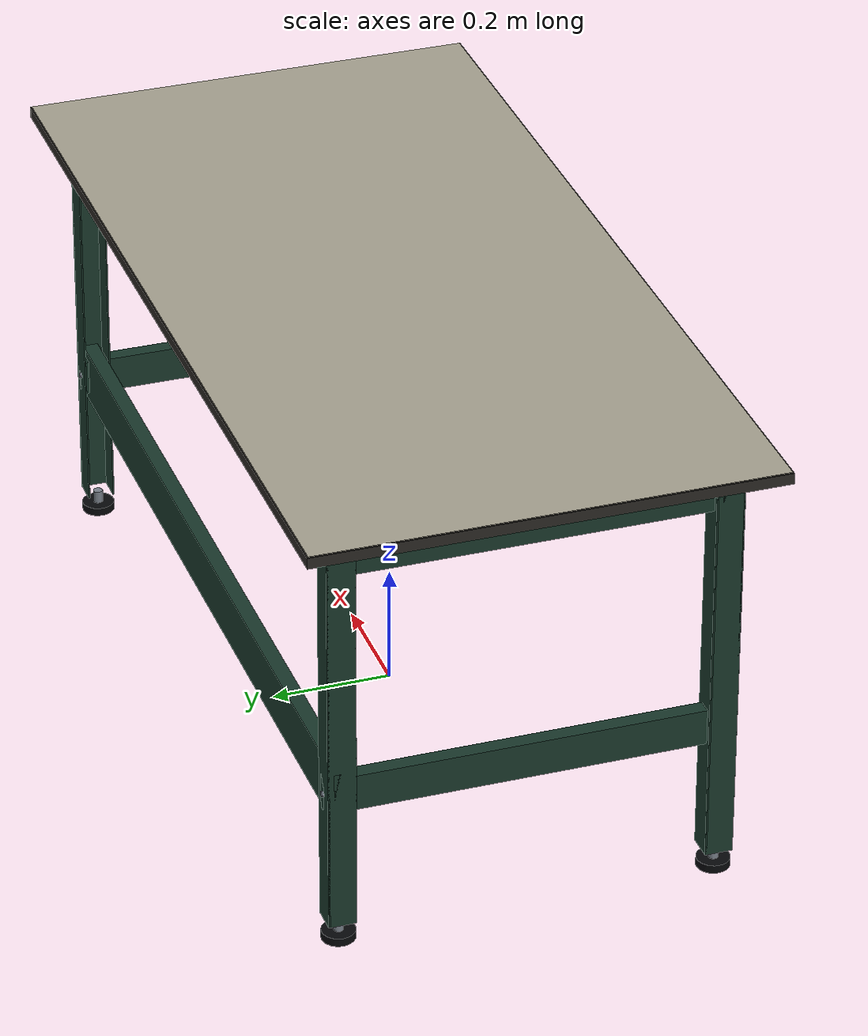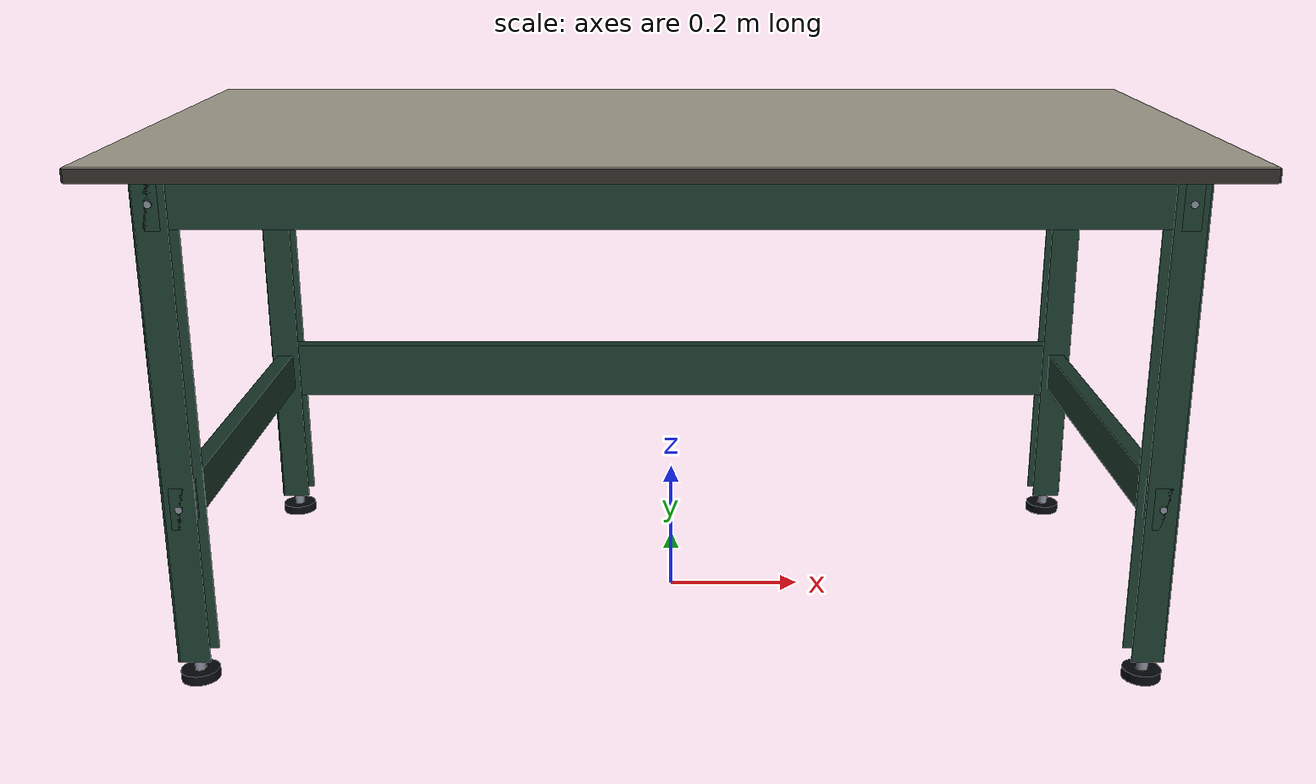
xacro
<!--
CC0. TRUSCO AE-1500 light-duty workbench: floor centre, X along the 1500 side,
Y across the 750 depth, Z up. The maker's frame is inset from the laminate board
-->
<?xml version="1.0"?>
<robot xmlns:xacro="http://www.ros.org/wiki/xacro" name="trusco-ae-1500-frame">
  <xacro:include filename="../../equipment-common/visual/primitives.xacro"/>
  <xacro:arg name="width" default="1.5"/><xacro:arg name="depth" default="0.75"/>
  <xacro:arg name="height" default="0.74"/><xacro:arg name="leg" default="0.045"/>
  <xacro:arg name="top_thickness" default="0.021"/>
  <xacro:arg name="inset_length" default="0.085"/><xacro:arg name="inset_width" default="0.070"/>
  <xacro:property name="w" value="$(arg width)"/><xacro:property name="d" value="$(arg depth)"/>
  <xacro:property name="h" value="$(arg height)"/><xacro:property name="leg" value="$(arg leg)"/>
  <xacro:property name="t" value="$(arg top_thickness)"/>
  <xacro:property name="ix" value="$(arg inset_length)"/><xacro:property name="iy" value="$(arg inset_width)"/>
  <xacro:property name="foot" value="0.035"/>       <!-- adjuster: pad + stem under the leg -->
  <xacro:property name="hl" value="${h - t - foot}"/> <!-- the folded leg itself -->
  <material name="paint"><color rgba="0.10 0.22 0.17 1"/></material>
  <material name="laminate"><color rgba="0.66 0.64 0.57 1"/></material>
  <material name="edge"><color rgba="0.17 0.16 0.14 1"/></material>
  <material name="zinc"><color rgba="0.48 0.51 0.55 1"/></material>
  <material name="rubber"><color rgba="0.025 0.032 0.040 1"/></material>
  <link name="root"/>
  <!-- The laminate board with its dark edge band. -->
  <xacro:box name="top" size="${w} ${d} ${t}" xyz="0 0 ${h - t/2}" mat="laminate"/>
  <xacro:box name="edge_front" size="${w} 0.002 ${t - 0.003}" xyz="0 ${-d/2 - 0.001} ${h - t/2}" mat="edge"/>
  <xacro:box name="edge_back" size="${w} 0.002 ${t - 0.003}" xyz="0 ${d/2 + 0.001} ${h - t/2}" mat="edge"/>
  <xacro:box name="edge_left" size="0.002 ${d + 0.004} ${t - 0.003}" xyz="${-w/2 - 0.001} 0 ${h - t/2}" mat="edge"/>
  <xacro:box name="edge_right" size="0.002 ${d + 0.004} ${t - 0.003}" xyz="${w/2 + 0.001} 0 ${h - t/2}" mat="edge"/>
  <!-- A folded C-section leg at each inset corner, open toward the bench's centre,
       standing on an adjuster; two bolt heads where the aprons and ties meet it. -->
  <xacro:macro name="leg" params="i sx sy">
    <xacro:property name="px" value="${sx * (w/2 - ix)}"/>
    <xacro:property name="py" value="${sy * (d/2 - iy)}"/>
    <xacro:cylinder name="pad_${i}" radius="0.027" length="0.014" xyz="${px} ${py} 0.007" rpy="0 0 0" mat="rubber"/>
    <xacro:cylinder name="stem_${i}" radius="0.008" length="${foot - 0.007}" xyz="${px} ${py} ${(foot + 0.007)/2}" rpy="0 0 0" mat="zinc"/>
    <xacro:box name="web_${i}" size="0.0025 ${leg} ${hl}" xyz="${px + sx * (leg/2 - 0.00125)} ${py} ${foot + hl/2}" mat="paint"/>
    <xacro:box name="flange_front_${i}" size="${leg} 0.0025 ${hl}" xyz="${px} ${py - leg/2 + 0.00125} ${foot + hl/2}" mat="paint"/>
    <xacro:box name="flange_back_${i}" size="${leg} 0.0025 ${hl}" xyz="${px} ${py + leg/2 - 0.00125} ${foot + hl/2}" mat="paint"/>
    <xacro:cylinder name="bolt_upper_${i}" radius="0.005" length="0.003" xyz="${px} ${py + sy * (leg/2 + 0.0015)} ${h - t - 0.035}" rpy="${pi/2} 0 0" mat="zinc"/>
    <xacro:cylinder name="bolt_lower_${i}" radius="0.005" length="0.003" xyz="${px} ${py + sy * (leg/2 + 0.0015)} 0.265" rpy="${pi/2} 0 0" mat="zinc"/>
  </xacro:macro>
  <xacro:leg i="0" sx="-1" sy="-1"/><xacro:leg i="1" sx="1" sy="-1"/>
  <xacro:leg i="2" sx="1" sy="1"/><xacro:leg i="3" sx="-1" sy="1"/>
  <!-- Aprons and end rails under the board, between the legs; a low rear stretcher
       and end ties keep the front knee space open. -->
  <xacro:property name="ax" value="${w - 2*ix + leg}"/>
  <xacro:property name="ay" value="${d - 2*iy + leg}"/>
  <xacro:box name="apron_front" size="${ax} 0.025 0.07" xyz="0 ${-(d/2 - iy)} ${h - t - 0.035}" mat="paint"/>
  <xacro:box name="apron_back" size="${ax} 0.025 0.07" xyz="0 ${d/2 - iy} ${h - t - 0.035}" mat="paint"/>
  <xacro:box name="end_left" size="0.025 ${ay} 0.07" xyz="${-(w/2 - ix)} 0 ${h - t - 0.035}" mat="paint"/>
  <xacro:box name="end_right" size="0.025 ${ay} 0.07" xyz="${w/2 - ix} 0 ${h - t - 0.035}" mat="paint"/>
  <xacro:box name="tie_left" size="0.025 ${ay} 0.06" xyz="${-(w/2 - ix)} 0 0.265" mat="paint"/>
  <xacro:box name="tie_right" size="0.025 ${ay} 0.06" xyz="${w/2 - ix} 0 0.265" mat="paint"/>
  <xacro:box name="rear_stretcher" size="${ax} 0.025 0.09" xyz="0 ${d/2 - iy} 0.265" mat="paint"/>
</robot>

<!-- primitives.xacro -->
<!-- CC0. Visual-only primitives, each with a stable removable resident name. -->
<robot xmlns:xacro="http://www.ros.org/wiki/xacro">
  <xacro:macro name="box" params="name size xyz mat">
    <link name="${name}"><visual><origin xyz="${xyz}"/>
      <geometry><box size="${size}"/></geometry><material name="${mat}"/>
    </visual></link>
    <joint name="j_${name}" type="fixed"><parent link="root"/><child link="${name}"/></joint>
  </xacro:macro>
  <xacro:macro name="cylinder" params="name radius length xyz rpy mat">
    <link name="${name}"><visual><origin xyz="${xyz}" rpy="${rpy}"/>
      <geometry><cylinder radius="${radius}" length="${length}"/></geometry><material name="${mat}"/>
    </visual></link>
    <joint name="j_${name}" type="fixed"><parent link="root"/><child link="${name}"/></joint>
  </xacro:macro>
  <xacro:macro name="mesh" params="name file xyz mat">
    <link name="${name}"><visual><origin xyz="${xyz}"/>
      <geometry><mesh filename="${file}"/></geometry><material name="${mat}"/>
    </visual></link>
    <joint name="j_${name}" type="fixed"><parent link="root"/><child link="${name}"/></joint>
  </xacro:macro>
</robot>
